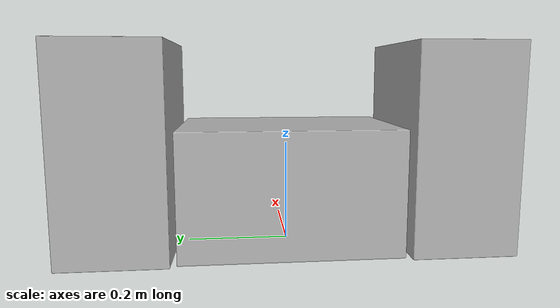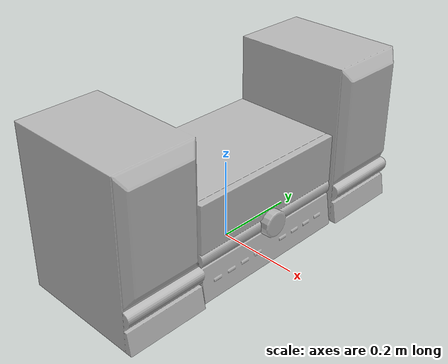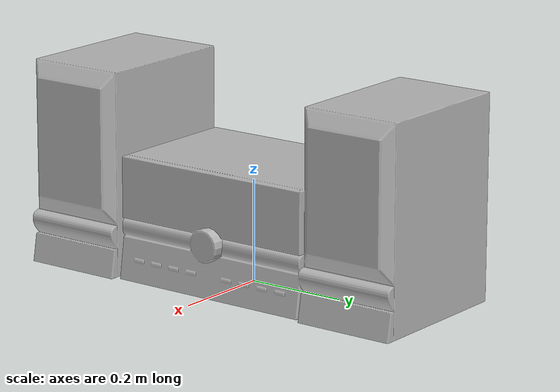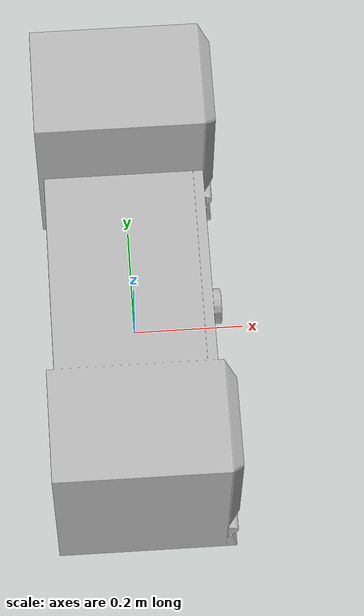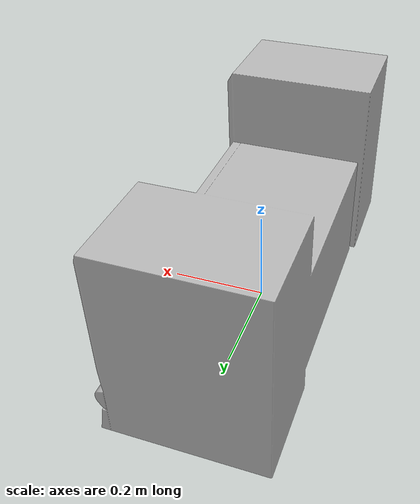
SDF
<?xml version='1.0'?>
<sdf version='1.4'>
  <model name='218'>
    <pose>0 0 0 0 0 0</pose>
    <static>true</static>
    <link name='link'>
      <collision name='collision'>
        <pose>0 0 0 0 0 0</pose>
        <geometry>
          <box>
            <size>0.318 0.84 2</size>
          </box>
        </geometry>
      </collision>
      <visual name='visual'>
        <pose>0 0 0 0 0 0</pose>
        <geometry>
          <mesh><uri>model://218/218.dae</uri></mesh>
        </geometry>
      </visual>
    </link>
  </model>
</sdf>
